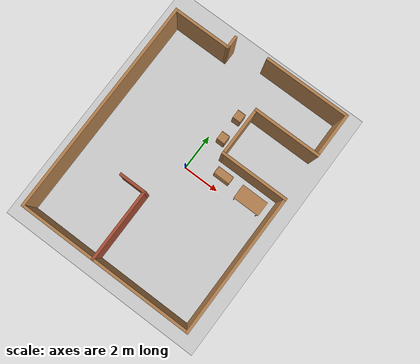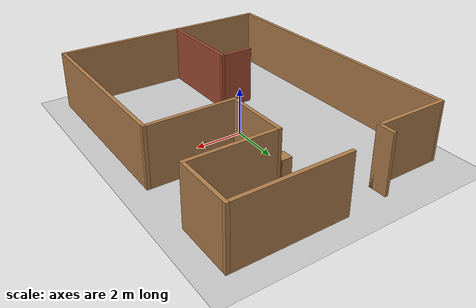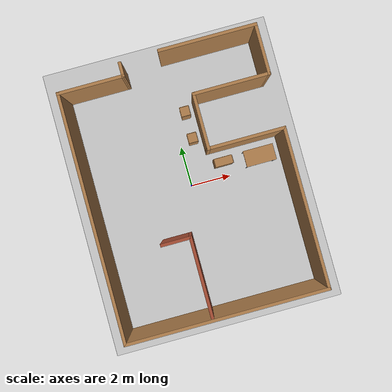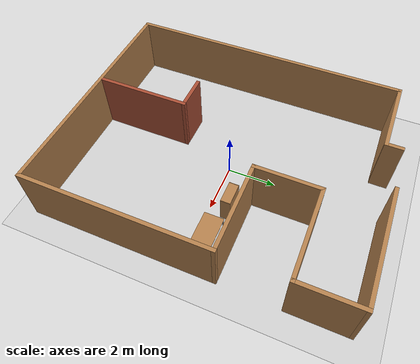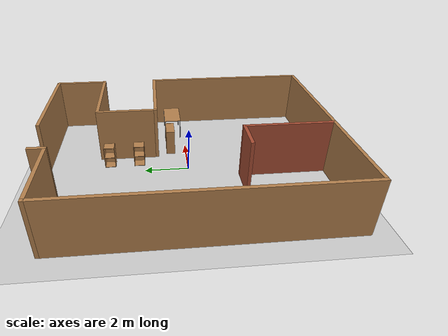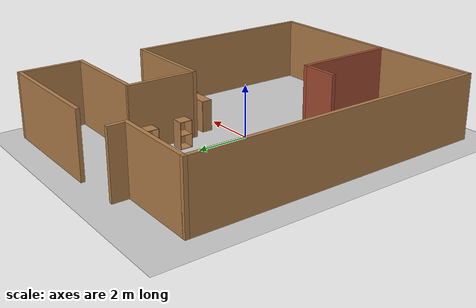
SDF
<sdf version="1.7">
 <world name="default">
  <light name="sun" type="directional">
   <pose>0 0 10 0 -0 0</pose>
   <diffuse>0.8 0.8 0.8 1</diffuse>
   <specular>0.2 0.2 0.2 1</specular>
   <attenuation>
    <range>1000</range>
    <constant>0.9</constant>
    <linear>0.01</linear>
    <quadratic>0.001</quadratic>
   </attenuation>
   <direction>-0.5 0.1 -0.9</direction>
   <spot><inner_angle>0</inner_angle><outer_angle>0</outer_angle><falloff>0</falloff></spot>
  </light>
  <model name="ground_plane">
   <static>1</static>
   <link name="link">
    <collision name="collision">
     <geometry><plane><normal>0 0 1</normal><size>100 100</size></plane></geometry>
     <surface>
      <contact><collide_bitmask>65535</collide_bitmask></contact>
      <friction><ode><mu>100</mu><mu2>50</mu2></ode></friction>
     </surface>
    </collision>
    <visual name="visual">
     <cast_shadows>0</cast_shadows>
     <geometry><plane><normal>0 0 1</normal><size>100 100</size></plane></geometry>
     <material>
      <script><uri>file://media/materials/scripts/gazebo.material</uri><name>Gazebo/Grey</name></script>
     </material>
    </visual>
   </link>
  </model>
  <gravity>0 0 -9.8</gravity>
  <magnetic_field>6e-06 2.3e-05 -4.2e-05</magnetic_field>
  <atmosphere type="adiabatic"/>
  <physics type="ode">
   <max_step_size>0.001</max_step_size>
   <real_time_factor>1</real_time_factor>
   <real_time_update_rate>1000</real_time_update_rate>
  </physics>
  <scene><ambient>0.4 0.4 0.4 1</ambient><background>0.7 0.7 0.7 1</background><shadows>1</shadows></scene>
  <spherical_coordinates>
   <surface_model>EARTH_WGS84</surface_model>
   <latitude_deg>0</latitude_deg>
   <longitude_deg>0</longitude_deg>
   <elevation>0</elevation>
   <heading_deg>0</heading_deg>
  </spherical_coordinates>
  <model name="rtabmap.world">
   <pose>-0.008679 0.07657 0 0 -0 0</pose>
   <link name="Wall_1">
    <collision name="Wall_1_Collision">
     <geometry><box><size>12 0.15 2.5</size></box></geometry>
     <pose>0 0 1.25 0 -0 0</pose>
    </collision>
    <visual name="Wall_1_Visual">
     <pose>0 0 1.25 0 -0 0</pose>
     <geometry><box><size>12 0.15 2.5</size></box></geometry>
     <material>
      <script><uri>file://media/materials/scripts/gazebo.material</uri><name>Gazebo/Wood</name></script>
      <ambient>1 1 1 1</ambient>
     </material>
     <meta><layer>0</layer></meta>
    </visual>
    <pose>-4.8 -0.349999 0 0 -0 -1.5708</pose>
   </link>
   <link name="Wall_10">
    <collision name="Wall_10_Collision">
     <geometry><box><size>3.25 0.15 2.5</size></box></geometry>
     <pose>0 0 1.25 0 -0 0</pose>
    </collision>
    <visual name="Wall_10_Visual">
     <pose>0 0 1.25 0 -0 0</pose>
     <geometry><box><size>3.25 0.15 2.5</size></box></geometry>
     <material>
      <script><uri>file://media/materials/scripts/gazebo.material</uri><name>Gazebo/Wood</name></script>
      <ambient>1 1 1 1</ambient>
     </material>
     <meta><layer>0</layer></meta>
    </visual>
    <pose>-3.25 5.575 0 0 -0 0</pose>
   </link>
   <link name="Wall_11">
    <collision name="Wall_11_Collision">
     <geometry><box><size>0.75 0.15 2.5</size></box></geometry>
     <pose>0 0 1.25 0 -0 0</pose>
    </collision>
    <visual name="Wall_11_Visual">
     <pose>0 0 1.25 0 -0 0</pose>
     <geometry><box><size>0.75 0.15 2.5</size></box></geometry>
     <material>
      <script><uri>file://media/materials/scripts/gazebo.material</uri><name>Gazebo/Wood</name></script>
      <ambient>1 1 1 1</ambient>
     </material>
     <meta><layer>0</layer></meta>
    </visual>
    <pose>-1.7 5.875 0 0 -0 1.5708</pose>
   </link>
   <link name="Wall_16">
    <collision name="Wall_16_Collision">
     <geometry><box><size>4 0.15 2.5</size></box></geometry>
     <pose>0 0 1.25 0 -0 0</pose>
    </collision>
    <visual name="Wall_16_Visual">
     <pose>0 0 1.25 0 -0 0</pose>
     <geometry><box><size>4 0.15 2.5</size></box></geometry>
     <material>
      <script><uri>file://media/materials/scripts/gazebo.material</uri><name>Gazebo/Bricks</name></script>
      <ambient>1 1 1 1</ambient>
     </material>
     <meta><layer>0</layer></meta>
    </visual>
    <pose>-0.669642 -4.30133 0 0 -0 1.5708</pose>
   </link>
   <link name="Wall_17">
    <collision name="Wall_17_Collision">
     <geometry><box><size>1.5 0.15 2.5</size></box></geometry>
     <pose>0 0 1.25 0 -0 0</pose>
    </collision>
    <visual name="Wall_17_Visual">
     <pose>0 0 1.25 0 -0 0</pose>
     <geometry><box><size>1.5 0.15 2.5</size></box></geometry>
     <material>
      <script><uri>file://media/materials/scripts/gazebo.material</uri><name>Gazebo/Bricks</name></script>
      <ambient>1 1 1 1</ambient>
     </material>
     <meta><layer>0</layer></meta>
    </visual>
    <pose>-1.34464 -2.37633 0 0 -0 3.14159</pose>
   </link>
   <link name="Wall_2">
    <collision name="Wall_2_Collision">
     <geometry><box><size>9.75 0.15 2.5</size></box></geometry>
     <pose>0 0 1.25 0 -0 0</pose>
    </collision>
    <visual name="Wall_2_Visual">
     <pose>0 0 1.25 0 -0 0</pose>
     <geometry><box><size>9.75 0.15 2.5</size></box></geometry>
     <material>
      <script><uri>file://media/materials/scripts/gazebo.material</uri><name>Gazebo/Wood</name></script>
      <ambient>1 1 1 1</ambient>
     </material>
     <meta><layer>0</layer></meta>
    </visual>
    <pose>0 -6.275 0 0 -0 0</pose>
   </link>
   <link name="Wall_3">
    <collision name="Wall_3_Collision">
     <geometry><box><size>7.75 0.15 2.5</size></box></geometry>
     <pose>0 0 1.25 0 -0 0</pose>
    </collision>
    <visual name="Wall_3_Visual">
     <pose>0 0 1.25 0 -0 0</pose>
     <geometry><box><size>7.75 0.15 2.5</size></box></geometry>
     <material>
      <script><uri>file://media/materials/scripts/gazebo.material</uri><name>Gazebo/Wood</name></script>
      <ambient>1 1 1 1</ambient>
     </material>
     <meta><layer>0</layer></meta>
    </visual>
    <pose>4.8 -2.475 0 0 -0 1.5708</pose>
   </link>
   <link name="Wall_4">
    <collision name="Wall_4_Collision">
     <geometry><box><size>3.75 0.15 2.5</size></box></geometry>
     <pose>0 0 1.25 0 -0 0</pose>
    </collision>
    <visual name="Wall_4_Visual">
     <pose>0 0 1.25 0 -0 0</pose>
     <geometry><box><size>3.75 0.15 2.5</size></box></geometry>
     <material>
      <script><uri>file://media/materials/scripts/gazebo.material</uri><name>Gazebo/Wood</name></script>
      <ambient>1 1 1 1</ambient>
     </material>
     <meta><layer>0</layer></meta>
    </visual>
    <pose>3 1.325 0 0 -0 3.14159</pose>
   </link>
   <link name="Wall_5">
    <collision name="Wall_5_Collision">
     <geometry><box><size>2.75 0.15 2.5</size></box></geometry>
     <pose>0 0 1.25 0 -0 0</pose>
    </collision>
    <visual name="Wall_5_Visual">
     <pose>0 0 1.25 0 -0 0</pose>
     <geometry><box><size>2.75 0.15 2.5</size></box></geometry>
     <material>
      <script><uri>file://media/materials/scripts/gazebo.material</uri><name>Gazebo/Wood</name></script>
      <ambient>1 1 1 1</ambient>
     </material>
     <meta><layer>0</layer></meta>
    </visual>
    <pose>1.2 2.625 0 0 -0 1.5708</pose>
   </link>
   <link name="Wall_6">
    <collision name="Wall_6_Collision">
     <geometry><box><size>3.75 0.15 2.5</size></box></geometry>
     <pose>0 0 1.25 0 -0 0</pose>
    </collision>
    <visual name="Wall_6_Visual">
     <pose>0 0 1.25 0 -0 0</pose>
     <geometry><box><size>3.75 0.15 2.5</size></box></geometry>
     <material>
      <script><uri>file://media/materials/scripts/gazebo.material</uri><name>Gazebo/Wood</name></script>
      <ambient>1 1 1 1</ambient>
     </material>
     <meta><layer>0</layer></meta>
    </visual>
    <pose>3 3.925 0 0 -0 0</pose>
   </link>
   <link name="Wall_7">
    <collision name="Wall_7_Collision">
     <geometry><box><size>2.5 0.15 2.5</size></box></geometry>
     <pose>0 0 1.25 0 -0 0</pose>
    </collision>
    <visual name="Wall_7_Visual">
     <pose>0 0 1.25 0 -0 0</pose>
     <geometry><box><size>2.5 0.15 2.5</size></box></geometry>
     <material>
      <script><uri>file://media/materials/scripts/gazebo.material</uri><name>Gazebo/Wood</name></script>
      <ambient>1 1 1 1</ambient>
     </material>
     <meta><layer>0</layer></meta>
    </visual>
    <pose>4.8 5.1 0 0 -0 1.5708</pose>
   </link>
   <link name="Wall_8">
    <collision name="Wall_8_Collision">
     <geometry><box><size>4.75 0.15 2.5</size></box></geometry>
     <pose>0 0 1.25 0 -0 0</pose>
    </collision>
    <visual name="Wall_8_Visual">
     <pose>0 0 1.25 0 -0 0</pose>
     <geometry><box><size>4.75 0.15 2.5</size></box></geometry>
     <material>
      <script><uri>file://media/materials/scripts/gazebo.material</uri><name>Gazebo/Wood</name></script>
      <ambient>1 1 1 1</ambient>
     </material>
     <meta><layer>0</layer></meta>
    </visual>
    <pose>2.5 6.275 0 0 -0 3.14159</pose>
   </link>
   <static>1</static>
  </model>
  <model name="cabinet">
   <static>1</static>
   <link name="cabinet_bottom_plate">
    <inertial>
     <pose>0 0 -1 0 -0 0</pose>
     <inertia><ixx>2.05</ixx><ixy>0</ixy><ixz>0</ixz><iyy>2.05</iyy><iyz>0</iyz><izz>2.05</izz></inertia>
     <mass>25</mass>
    </inertial>
    <collision name="cabinet_bottom_plate_geom">
     <pose>0 0 0.01 0 -0 0</pose>
     <geometry><box><size>0.45 0.45 0.02</size></box></geometry>
    </collision>
    <visual name="cabinet_bottom_plate_geom_visual">
     <pose>0 0 0.01 0 -0 0</pose>
     <geometry><box><size>0.45 0.45 0.02</size></box></geometry>
     <material>
      <script><uri>file://media/materials/scripts/gazebo.material</uri><name>Gazebo/Wood</name></script>
     </material>
    </visual>
    <collision name="cabinet_bottom_plate_geom_cabinet_back_plate">
     <pose>0.235 0 0.51 0 -0 0</pose>
     <geometry><box><size>0.02 0.45 1.02</size></box></geometry>
    </collision>
    <visual name="cabinet_bottom_plate_geom_cabinet_back_plate_visual">
     <pose>0.235 0 0.51 0 -0 0</pose>
     <geometry><box><size>0.02 0.45 1.02</size></box></geometry>
     <material>
      <script><uri>file://media/materials/scripts/gazebo.material</uri><name>Gazebo/Wood</name></script>
     </material>
    </visual>
    <collision name="cabinet_bottom_plate_geom_cabinet_left_plate">
     <pose>0 0.235 0.51 0 -0 0</pose>
     <geometry><box><size>0.45 0.02 1.02</size></box></geometry>
    </collision>
    <visual name="cabinet_bottom_plate_geom_cabinet_left_plate_visual">
     <pose>0 0.235 0.51 0 -0 0</pose>
     <geometry><box><size>0.45 0.02 1.02</size></box></geometry>
     <material>
      <script><uri>file://media/materials/scripts/gazebo.material</uri><name>Gazebo/Wood</name></script>
     </material>
    </visual>
    <collision name="cabinet_bottom_plate_geom_cabinet_middle_plate">
     <pose>0 0 0.51 0 -0 0</pose>
     <geometry><box><size>0.45 0.45 0.02</size></box></geometry>
    </collision>
    <visual name="cabinet_bottom_plate_geom_cabinet_middle_plate_visual">
     <pose>0 0 0.51 0 -0 0</pose>
     <geometry><box><size>0.45 0.45 0.02</size></box></geometry>
     <material>
      <script><uri>file://media/materials/scripts/gazebo.material</uri><name>Gazebo/Wood</name></script>
     </material>
    </visual>
    <collision name="cabinet_bottom_plate_geom_cabinet_right_plate">
     <pose>0 -0.235 0.51 0 -0 0</pose>
     <geometry><box><size>0.45 0.02 1.02</size></box></geometry>
    </collision>
    <visual name="cabinet_bottom_plate_geom_cabinet_right_plate_visual">
     <pose>0 -0.235 0.51 0 -0 0</pose>
     <geometry><box><size>0.45 0.02 1.02</size></box></geometry>
     <material>
      <script><uri>file://media/materials/scripts/gazebo.material</uri><name>Gazebo/Wood</name></script>
     </material>
    </visual>
    <collision name="cabinet_bottom_plate_geom_cabinet_top_plate">
     <pose>0 0 1.01 0 -0 0</pose>
     <geometry><box><size>0.45 0.45 0.02</size></box></geometry>
    </collision>
    <visual name="cabinet_bottom_plate_geom_cabinet_top_plate_visual">
     <pose>0 0 1.01 0 -0 0</pose>
     <geometry><box><size>0.45 0.45 0.02</size></box></geometry>
     <material>
      <script><uri>file://media/materials/scripts/gazebo.material</uri><name>Gazebo/Wood</name></script>
     </material>
    </visual>
   </link>
   <pose>0.642208 3.58365 0 0 -0 0</pose>
  </model>
  <model name="cabinet_0">
   <static>1</static>
   <link name="cabinet_bottom_plate">
    <inertial>
     <pose>0 0 -1 0 -0 0</pose>
     <inertia><ixx>2.05</ixx><ixy>0</ixy><ixz>0</ixz><iyy>2.05</iyy><iyz>0</iyz><izz>2.05</izz></inertia>
     <mass>25</mass>
    </inertial>
    <collision name="cabinet_bottom_plate_geom">
     <pose>0 0 0.01 0 -0 0</pose>
     <geometry><box><size>0.45 0.45 0.02</size></box></geometry>
    </collision>
    <visual name="cabinet_bottom_plate_geom_visual">
     <pose>0 0 0.01 0 -0 0</pose>
     <geometry><box><size>0.45 0.45 0.02</size></box></geometry>
     <material>
      <script><uri>file://media/materials/scripts/gazebo.material</uri><name>Gazebo/Wood</name></script>
     </material>
    </visual>
    <collision name="cabinet_bottom_plate_geom_cabinet_back_plate">
     <pose>0.235 0 0.51 0 -0 0</pose>
     <geometry><box><size>0.02 0.45 1.02</size></box></geometry>
    </collision>
    <visual name="cabinet_bottom_plate_geom_cabinet_back_plate_visual">
     <pose>0.235 0 0.51 0 -0 0</pose>
     <geometry><box><size>0.02 0.45 1.02</size></box></geometry>
     <material>
      <script><uri>file://media/materials/scripts/gazebo.material</uri><name>Gazebo/Wood</name></script>
     </material>
    </visual>
    <collision name="cabinet_bottom_plate_geom_cabinet_left_plate">
     <pose>0 0.235 0.51 0 -0 0</pose>
     <geometry><box><size>0.45 0.02 1.02</size></box></geometry>
    </collision>
    <visual name="cabinet_bottom_plate_geom_cabinet_left_plate_visual">
     <pose>0 0.235 0.51 0 -0 0</pose>
     <geometry><box><size>0.45 0.02 1.02</size></box></geometry>
     <material>
      <script><uri>file://media/materials/scripts/gazebo.material</uri><name>Gazebo/Wood</name></script>
     </material>
    </visual>
    <collision name="cabinet_bottom_plate_geom_cabinet_middle_plate">
     <pose>0 0 0.51 0 -0 0</pose>
     <geometry><box><size>0.45 0.45 0.02</size></box></geometry>
    </collision>
    <visual name="cabinet_bottom_plate_geom_cabinet_middle_plate_visual">
     <pose>0 0 0.51 0 -0 0</pose>
     <geometry><box><size>0.45 0.45 0.02</size></box></geometry>
     <material>
      <script><uri>file://media/materials/scripts/gazebo.material</uri><name>Gazebo/Wood</name></script>
     </material>
    </visual>
    <collision name="cabinet_bottom_plate_geom_cabinet_right_plate">
     <pose>0 -0.235 0.51 0 -0 0</pose>
     <geometry><box><size>0.45 0.02 1.02</size></box></geometry>
    </collision>
    <visual name="cabinet_bottom_plate_geom_cabinet_right_plate_visual">
     <pose>0 -0.235 0.51 0 -0 0</pose>
     <geometry><box><size>0.45 0.02 1.02</size></box></geometry>
     <material>
      <script><uri>file://media/materials/scripts/gazebo.material</uri><name>Gazebo/Wood</name></script>
     </material>
    </visual>
    <collision name="cabinet_bottom_plate_geom_cabinet_top_plate">
     <pose>0 0 1.01 0 -0 0</pose>
     <geometry><box><size>0.45 0.45 0.02</size></box></geometry>
    </collision>
    <visual name="cabinet_bottom_plate_geom_cabinet_top_plate_visual">
     <pose>0 0 1.01 0 -0 0</pose>
     <geometry><box><size>0.45 0.45 0.02</size></box></geometry>
     <material>
      <script><uri>file://media/materials/scripts/gazebo.material</uri><name>Gazebo/Wood</name></script>
     </material>
    </visual>
   </link>
   <pose>0.653706 2.24129 0 0 -0 0</pose>
  </model>
  <model name="bookshelf">
   <static>1</static>
   <link name="link">
    <inertial><mass>1</mass></inertial>
    <collision name="back">
     <pose>0 0.005 0.6 0 -0 0</pose>
     <geometry><box><size>0.9 0.01 1.2</size></box></geometry>
    </collision>
    <visual name="visual1">
     <pose>0 0.005 0.6 0 -0 0</pose>
     <geometry><box><size>0.9 0.01 1.2</size></box></geometry>
     <material>
      <script><uri>file://media/materials/scripts/gazebo.material</uri><name>Gazebo/Wood</name></script>
     </material>
    </visual>
    <collision name="left_side">
     <pose>0.45 -0.195 0.6 0 -0 0</pose>
     <geometry><box><size>0.02 0.4 1.2</size></box></geometry>
    </collision>
    <visual name="visual2">
     <pose>0.45 -0.195 0.6 0 -0 0</pose>
     <geometry><box><size>0.02 0.4 1.2</size></box></geometry>
     <material>
      <script><uri>file://media/materials/scripts/gazebo.material</uri><name>Gazebo/Wood</name></script>
     </material>
    </visual>
    <collision name="right_side">
     <pose>-0.45 -0.195 0.6 0 -0 0</pose>
     <geometry><box><size>0.02 0.4 1.2</size></box></geometry>
    </collision>
    <visual name="visual3">
     <pose>-0.45 -0.195 0.6 0 -0 0</pose>
     <geometry><box><size>0.02 0.4 1.2</size></box></geometry>
     <material>
      <script><uri>file://media/materials/scripts/gazebo.material</uri><name>Gazebo/Wood</name></script>
     </material>
    </visual>
    <collision name="bottom">
     <pose>0 -0.195 0.03 0 -0 0</pose>
     <geometry><box><size>0.88 0.4 0.06</size></box></geometry>
    </collision>
    <visual name="visual4">
     <pose>0 -0.195 0.03 0 -0 0</pose>
     <geometry><box><size>0.88 0.4 0.06</size></box></geometry>
     <material>
      <script><uri>file://media/materials/scripts/gazebo.material</uri><name>Gazebo/Wood</name></script>
     </material>
    </visual>
    <collision name="top">
     <pose>0 -0.195 1.19 0 -0 0</pose>
     <geometry><box><size>0.88 0.4 0.02</size></box></geometry>
    </collision>
    <visual name="visual5">
     <pose>0 -0.195 1.19 0 -0 0</pose>
     <geometry><box><size>0.88 0.4 0.02</size></box></geometry>
     <material>
      <script><uri>file://media/materials/scripts/gazebo.material</uri><name>Gazebo/Wood</name></script>
     </material>
    </visual>
    <collision name="low_shelf">
     <pose>0 -0.195 0.43 0 -0 0</pose>
     <geometry><box><size>0.88 0.4 0.02</size></box></geometry>
    </collision>
    <visual name="visual6">
     <pose>0 -0.195 0.43 0 -0 0</pose>
     <geometry><box><size>0.88 0.4 0.02</size></box></geometry>
     <material>
      <script><uri>file://media/materials/scripts/gazebo.material</uri><name>Gazebo/Wood</name></script>
     </material>
    </visual>
    <collision name="high_shelf">
     <pose>0 -0.195 0.8 0 -0 0</pose>
     <geometry><box><size>0.88 0.4 0.02</size></box></geometry>
    </collision>
    <visual name="visual7">
     <pose>0 -0.195 0.8 0 -0 0</pose>
     <geometry><box><size>0.88 0.4 0.02</size></box></geometry>
     <material>
      <script><uri>file://media/materials/scripts/gazebo.material</uri><name>Gazebo/Wood</name></script>
     </material>
    </visual>
   </link>
   <pose>1.80434 0.934505 0 0 -0 0</pose>
  </model>
  <model name="table">
   <static>1</static>
   <link name="link">
    <collision name="surface">
     <pose>0 0 1 0 -0 0</pose>
     <geometry><box><size>1.5 0.8 0.03</size></box></geometry>
     <surface><friction><ode><mu>0.6</mu><mu2>0.6</mu2></ode></friction></surface>
    </collision>
    <visual name="visual1">
     <pose>0 0 1 0 -0 0</pose>
     <geometry><box><size>1.5 0.8 0.03</size></box></geometry>
     <material>
      <script><uri>file://media/materials/scripts/gazebo.material</uri><name>Gazebo/Wood</name></script>
     </material>
    </visual>
    <collision name="front_left_leg">
     <pose>0.68 0.38 0.5 0 -0 0</pose>
     <geometry><cylinder><radius>0.02</radius><length>1</length></cylinder></geometry>
    </collision>
    <visual name="front_left_leg">
     <pose>0.68 0.38 0.5 0 -0 0</pose>
     <geometry><cylinder><radius>0.02</radius><length>1</length></cylinder></geometry>
     <material>
      <script><uri>file://media/materials/scripts/gazebo.material</uri><name>Gazebo/Grey</name></script>
     </material>
    </visual>
    <collision name="front_right_leg">
     <pose>0.68 -0.38 0.5 0 -0 0</pose>
     <geometry><cylinder><radius>0.02</radius><length>1</length></cylinder></geometry>
    </collision>
    <visual name="front_right_leg">
     <pose>0.68 -0.38 0.5 0 -0 0</pose>
     <geometry><cylinder><radius>0.02</radius><length>1</length></cylinder></geometry>
     <material>
      <script><uri>file://media/materials/scripts/gazebo.material</uri><name>Gazebo/Grey</name></script>
     </material>
    </visual>
    <collision name="back_right_leg">
     <pose>-0.68 -0.38 0.5 0 -0 0</pose>
     <geometry><cylinder><radius>0.02</radius><length>1</length></cylinder></geometry>
    </collision>
    <visual name="back_right_leg">
     <pose>-0.68 -0.38 0.5 0 -0 0</pose>
     <geometry><cylinder><radius>0.02</radius><length>1</length></cylinder></geometry>
     <material>
      <script><uri>file://media/materials/scripts/gazebo.material</uri><name>Gazebo/Grey</name></script>
     </material>
    </visual>
    <collision name="back_left_leg">
     <pose>-0.68 0.38 0.5 0 -0 0</pose>
     <geometry><cylinder><radius>0.02</radius><length>1</length></cylinder></geometry>
    </collision>
    <visual name="back_left_leg">
     <pose>-0.68 0.38 0.5 0 -0 0</pose>
     <geometry><cylinder><radius>0.02</radius><length>1</length></cylinder></geometry>
     <material>
      <script><uri>file://media/materials/scripts/gazebo.material</uri><name>Gazebo/Grey</name></script>
     </material>
    </visual>
   </link>
   <pose>3.58567 0.548966 0 0 -0 0</pose>
  </model>
 </world>
</sdf>
